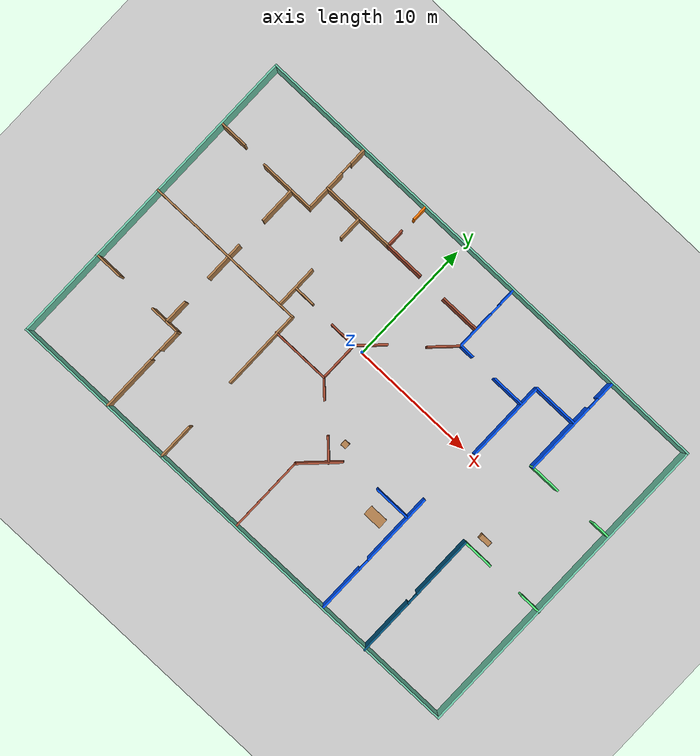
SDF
<sdf version="1.6">
 <world name="default">
  <model name="ground_plane">
   <static>1</static>
   <link name="link">
    <collision name="collision">
     <geometry><plane><normal>0 0 1</normal><size>100 100</size></plane></geometry>
     <surface>
      <contact><collide_bitmask>65535</collide_bitmask></contact>
      <friction><ode><mu>100</mu><mu2>50</mu2></ode></friction>
     </surface>
    </collision>
    <visual name="visual">
     <cast_shadows>0</cast_shadows>
     <geometry><plane><normal>0 0 1</normal><size>100 100</size></plane></geometry>
     <material>
      <script><uri>file://media/materials/scripts/gazebo.material</uri><name>Gazebo/Grey</name></script>
     </material>
    </visual>
   </link>
  </model>
  <model name="Building">
   <pose>1.66654 -2.2526 0 0 -0 0</pose>
   <link name="Wall_1">
    <collision name="Wall_1_Collision">
     <geometry><box><size>40 0.15 2.5</size></box></geometry>
     <pose>0 0 1.25 0 -0 0</pose>
    </collision>
    <visual name="Wall_1_Visual">
     <pose>0 0 1.25 0 -0 0</pose>
     <geometry><box><size>40 0.15 2.5</size></box></geometry>
     <material>
      <script><uri>file://media/materials/scripts/gazebo.material</uri><name>Gazebo/Grey</name></script>
      <ambient>0.435294 0.796078 0.67451 1</ambient>
     </material>
     <meta><layer>0</layer></meta>
    </visual>
    <pose>-0.022022 12.8298 0 0 -0 0</pose>
   </link>
   <link name="Wall_15">
    <pose>-12.1346 -9.16282 0 0 -0 1.5708</pose>
    <visual name="Wall_15_Visual_0">
     <pose>-1.36925 0 1.25 0 -0 0</pose>
     <geometry><box><size>4.51149 0.15 2.5</size></box></geometry>
     <material>
      <script><uri>file://media/materials/scripts/gazebo.material</uri><name>Gazebo/Wood</name></script>
      <ambient>1 1 1 1</ambient>
     </material>
     <meta><layer>0</layer></meta>
    </visual>
    <collision name="Wall_15_Collision_0">
     <geometry><box><size>4.51149 0.15 2.5</size></box></geometry>
     <pose>-1.36925 0 1.25 0 -0 0</pose>
    </collision>
    <visual name="Wall_15_Visual_1">
     <pose>2.70575 0 1.25 0 -0 0</pose>
     <geometry><box><size>1.83851 0.15 2.5</size></box></geometry>
     <material>
      <script><uri>file://media/materials/scripts/gazebo.material</uri><name>Gazebo/Wood</name></script>
      <ambient>1 1 1 1</ambient>
     </material>
     <meta><layer>0</layer></meta>
    </visual>
    <collision name="Wall_15_Collision_1">
     <geometry><box><size>1.83851 0.15 2.5</size></box></geometry>
     <pose>2.70575 0 1.25 0 -0 0</pose>
    </collision>
    <visual name="Wall_15_Visual_2">
     <pose>1.33649 0 2.25 0 -0 0</pose>
     <geometry><box><size>0.9 0.15 0.5</size></box></geometry>
     <material>
      <script><uri>file://media/materials/scripts/gazebo.material</uri><name>Gazebo/Wood</name></script>
      <ambient>1 1 1 1</ambient>
     </material>
     <meta><layer>0</layer></meta>
    </visual>
    <collision name="Wall_15_Collision_2">
     <geometry><box><size>0.9 0.15 0.5</size></box></geometry>
     <pose>1.33649 0 2.25 0 -0 0</pose>
    </collision>
   </link>
   <link name="Wall_16">
    <collision name="Wall_16_Collision">
     <geometry><box><size>2.5 0.15 2.5</size></box></geometry>
     <pose>0 0 1.25 0 -0 0</pose>
    </collision>
    <visual name="Wall_16_Visual">
     <pose>0 0 1.25 0 -0 0</pose>
     <geometry><box><size>2.5 0.15 2.5</size></box></geometry>
     <material>
      <script><uri>file://media/materials/scripts/gazebo.material</uri><name>Gazebo/Wood</name></script>
      <ambient>1 1 1 1</ambient>
     </material>
     <meta><layer>0</layer></meta>
    </visual>
    <pose>-13.3096 -5.61282 0 0 -0 3.14159</pose>
   </link>
   <link name="Wall_18">
    <collision name="Wall_18_Collision">
     <geometry><box><size>2.25 0.15 2.5</size></box></geometry>
     <pose>0 0 1.25 0 -0 0</pose>
    </collision>
    <visual name="Wall_18_Visual">
     <pose>0 0 1.25 0 -0 0</pose>
     <geometry><box><size>2.25 0.15 2.5</size></box></geometry>
     <material>
      <script><uri>file://media/materials/scripts/gazebo.material</uri><name>Gazebo/Wood</name></script>
      <ambient>1 1 1 1</ambient>
     </material>
     <meta><layer>0</layer></meta>
    </visual>
    <pose>-18.8793 -5.52715 0 0 -0 0</pose>
   </link>
   <link name="Wall_2">
    <collision name="Wall_2_Collision">
     <geometry><box><size>25.75 0.15 2.5</size></box></geometry>
     <pose>0 0 1.25 0 -0 0</pose>
    </collision>
    <visual name="Wall_2_Visual">
     <pose>0 0 1.25 0 -0 0</pose>
     <geometry><box><size>25.75 0.15 2.5</size></box></geometry>
     <material>
      <script><uri>file://media/materials/scripts/gazebo.material</uri><name>Gazebo/Grey</name></script>
      <ambient>0.435294 0.796078 0.67451 1</ambient>
     </material>
     <meta><layer>0</layer></meta>
    </visual>
    <pose>19.903 0.029824 0 0 0 -1.5708</pose>
   </link>
   <link name="Wall_20">
    <collision name="Wall_20_Collision">
     <geometry><box><size>3 0.15 2.5</size></box></geometry>
     <pose>0 0 1.25 0 -0 0</pose>
    </collision>
    <visual name="Wall_20_Visual">
     <pose>0 0 1.25 0 -0 0</pose>
     <geometry><box><size>3 0.15 2.5</size></box></geometry>
     <material>
      <script><uri>file://media/materials/scripts/gazebo.material</uri><name>Gazebo/Wood</name></script>
      <ambient>1 1 1 1</ambient>
     </material>
     <meta><layer>0</layer></meta>
    </visual>
    <pose>-13.1276 5.72535 0 0 0 -1.5708</pose>
   </link>
   <link name="Wall_22">
    <collision name="Wall_22_Collision">
     <geometry><box><size>2 0.15 2.5</size></box></geometry>
     <pose>0 0 1.25 0 -0 0</pose>
    </collision>
    <visual name="Wall_22_Visual">
     <pose>0 0 1.25 0 -0 0</pose>
     <geometry><box><size>2 0.15 2.5</size></box></geometry>
     <material>
      <script><uri>file://media/materials/scripts/gazebo.material</uri><name>Gazebo/Wood</name></script>
      <ambient>1 1 1 1</ambient>
     </material>
     <meta><layer>0</layer></meta>
    </visual>
    <pose>-13.1876 -4.66182 0 0 -0 1.5708</pose>
   </link>
   <link name="Wall_24">
    <pose>-15.2543 0.737272 0 0 -0 0</pose>
    <visual name="Wall_24_Visual_0">
     <pose>-3.16583 0 1.25 0 -0 0</pose>
     <geometry><box><size>3.16833 0.15 2.5</size></box></geometry>
     <material>
      <script><uri>file://media/materials/scripts/gazebo.material</uri><name>Gazebo/Wood</name></script>
      <ambient>1 1 1 1</ambient>
     </material>
     <meta><layer>0</layer></meta>
    </visual>
    <collision name="Wall_24_Collision_0">
     <geometry><box><size>3.16833 0.15 2.5</size></box></geometry>
     <pose>-3.16583 0 1.25 0 -0 0</pose>
    </collision>
    <visual name="Wall_24_Visual_1">
     <pose>2.03417 0 1.25 0 -0 0</pose>
     <geometry><box><size>5.43166 0.15 2.5</size></box></geometry>
     <material>
      <script><uri>file://media/materials/scripts/gazebo.material</uri><name>Gazebo/Wood</name></script>
      <ambient>1 1 1 1</ambient>
     </material>
     <meta><layer>0</layer></meta>
    </visual>
    <collision name="Wall_24_Collision_1">
     <geometry><box><size>5.43166 0.15 2.5</size></box></geometry>
     <pose>2.03417 0 1.25 0 -0 0</pose>
    </collision>
    <visual name="Wall_24_Visual_2">
     <pose>-1.13166 0 2.25 0 -0 0</pose>
     <geometry><box><size>0.9 0.15 0.5</size></box></geometry>
     <material>
      <script><uri>file://media/materials/scripts/gazebo.material</uri><name>Gazebo/Wood</name></script>
      <ambient>1 1 1 1</ambient>
     </material>
     <meta><layer>0</layer></meta>
    </visual>
    <collision name="Wall_24_Collision_2">
     <geometry><box><size>0.9 0.15 0.5</size></box></geometry>
     <pose>-1.13166 0 2.25 0 -0 0</pose>
    </collision>
   </link>
   <link name="Wall_26">
    <collision name="Wall_26_Collision">
     <geometry><box><size>3.25 0.15 2.5</size></box></geometry>
     <pose>0 0 1.25 0 -0 0</pose>
    </collision>
    <visual name="Wall_26_Visual">
     <pose>0 0 1.25 0 -0 0</pose>
     <geometry><box><size>3.25 0.15 2.5</size></box></geometry>
     <material>
      <script><uri>file://media/materials/scripts/gazebo.material</uri><name>Gazebo/Wood</name></script>
      <ambient>1 1 1 1</ambient>
     </material>
     <meta><layer>0</layer></meta>
    </visual>
    <pose>-13.1573 0.242073 0 0 0 -1.5708</pose>
   </link>
   <link name="Wall_29">
    <pose>12.8432 -7.65482 0 0 -0 1.5708</pose>
    <visual name="Wall_29_Visual_0">
     <pose>-2.98763 0 1.25 0 -0 0</pose>
     <geometry><box><size>4.52474 0.15 2.5</size></box></geometry>
     <material>
      <script><uri>file://media/materials/scripts/gazebo.material</uri><name>Gazebo/Grey</name></script>
      <ambient>0 0.333333 0.498039 1</ambient>
     </material>
     <meta><layer>0</layer></meta>
    </visual>
    <collision name="Wall_29_Collision_0">
     <geometry><box><size>4.52474 0.15 2.5</size></box></geometry>
     <pose>-2.98763 0 1.25 0 -0 0</pose>
    </collision>
    <visual name="Wall_29_Visual_1">
     <pose>2.71237 0 1.25 0 -0 0</pose>
     <geometry><box><size>5.07526 0.15 2.5</size></box></geometry>
     <material>
      <script><uri>file://media/materials/scripts/gazebo.material</uri><name>Gazebo/Grey</name></script>
      <ambient>0 0.333333 0.498039 1</ambient>
     </material>
     <meta><layer>0</layer></meta>
    </visual>
    <collision name="Wall_29_Collision_1">
     <geometry><box><size>5.07526 0.15 2.5</size></box></geometry>
     <pose>2.71237 0 1.25 0 -0 0</pose>
    </collision>
    <visual name="Wall_29_Visual_2">
     <pose>-0.275263 0 2.25 0 -0 0</pose>
     <geometry><box><size>0.9 0.15 0.5</size></box></geometry>
     <material>
      <script><uri>file://media/materials/scripts/gazebo.material</uri><name>Gazebo/Grey</name></script>
      <ambient>0 0.333333 0.498039 1</ambient>
     </material>
     <meta><layer>0</layer></meta>
    </visual>
    <collision name="Wall_29_Collision_2">
     <geometry><box><size>0.9 0.15 0.5</size></box></geometry>
     <pose>-0.275263 0 2.25 0 -0 0</pose>
    </collision>
   </link>
   <link name="Wall_3">
    <collision name="Wall_3_Collision">
     <geometry><box><size>40 0.15 2.5</size></box></geometry>
     <pose>0 0 1.25 0 -0 0</pose>
    </collision>
    <visual name="Wall_3_Visual">
     <pose>0 0 1.25 0 -0 0</pose>
     <geometry><box><size>40 0.15 2.5</size></box></geometry>
     <material>
      <script><uri>file://media/materials/scripts/gazebo.material</uri><name>Gazebo/Grey</name></script>
      <ambient>0.435294 0.796078 0.67451 1</ambient>
     </material>
     <meta><layer>0</layer></meta>
    </visual>
    <pose>-0.022022 -12.7702 0 0 -0 3.14159</pose>
   </link>
   <link name="Wall_30">
    <collision name="Wall_30_Collision">
     <geometry><box><size>2.5 0.15 2.5</size></box></geometry>
     <pose>0 0 1.25 0 -0 0</pose>
    </collision>
    <visual name="Wall_30_Visual">
     <pose>0 0 1.25 0 -0 0</pose>
     <geometry><box><size>2.5 0.15 2.5</size></box></geometry>
     <material>
      <script><uri>file://media/materials/scripts/gazebo.material</uri><name>Gazebo/Grey</name></script>
      <ambient>0.333333 1 0.498039 1</ambient>
     </material>
     <meta><layer>0</layer></meta>
    </visual>
    <pose>14.0182 -2.47982 0 0 -0 0</pose>
   </link>
   <link name="Wall_32">
    <collision name="Wall_32_Collision">
     <geometry><box><size>1.75 0.15 2.5</size></box></geometry>
     <pose>0 0 1.25 0 -0 0</pose>
    </collision>
    <visual name="Wall_32_Visual">
     <pose>0 0 1.25 0 -0 0</pose>
     <geometry><box><size>1.75 0.15 2.5</size></box></geometry>
     <material>
      <script><uri>file://media/materials/scripts/gazebo.material</uri><name>Gazebo/Grey</name></script>
      <ambient>0.333333 1 0.498039 1</ambient>
     </material>
     <meta><layer>0</layer></meta>
    </visual>
    <pose>19.147 -2.48795 0 0 -0 3.14159</pose>
   </link>
   <link name="Wall_34">
    <collision name="Wall_34_Collision">
     <geometry><box><size>1.5 0.15 2.5</size></box></geometry>
     <pose>0 0 1.25 0 -0 0</pose>
    </collision>
    <visual name="Wall_34_Visual">
     <pose>0 0 1.25 0 -0 0</pose>
     <geometry><box><size>1.5 0.15 2.5</size></box></geometry>
     <material>
      <script><uri>file://media/materials/scripts/gazebo.material</uri><name>Gazebo/Grey</name></script>
      <ambient>0.333333 1 0.498039 1</ambient>
     </material>
     <meta><layer>0</layer></meta>
    </visual>
    <pose>19.2034 4.71614 0 0 -0 3.14159</pose>
   </link>
   <link name="Wall_36">
    <pose>12.6743 8.69753 0 0 -0 1.5708</pose>
    <visual name="Wall_36_Visual_0">
     <pose>-1.21115 0 1.25 0 -0 0</pose>
     <geometry><box><size>5.8277 0.15 2.5</size></box></geometry>
     <material>
      <script><uri>file://media/materials/scripts/gazebo.material</uri><name>Gazebo/Grey</name></script>
      <ambient>0 0.333333 1 1</ambient>
     </material>
     <meta><layer>0</layer></meta>
    </visual>
    <collision name="Wall_36_Collision_0">
     <geometry><box><size>5.8277 0.15 2.5</size></box></geometry>
     <pose>-1.21115 0 1.25 0 -0 0</pose>
    </collision>
    <visual name="Wall_36_Visual_1">
     <pose>3.36385 0 1.25 0 -0 0</pose>
     <geometry><box><size>1.52231 0.15 2.5</size></box></geometry>
     <material>
      <script><uri>file://media/materials/scripts/gazebo.material</uri><name>Gazebo/Grey</name></script>
      <ambient>0 0.333333 1 1</ambient>
     </material>
     <meta><layer>0</layer></meta>
    </visual>
    <collision name="Wall_36_Collision_1">
     <geometry><box><size>1.52231 0.15 2.5</size></box></geometry>
     <pose>3.36385 0 1.25 0 -0 0</pose>
    </collision>
    <visual name="Wall_36_Visual_2">
     <pose>2.1527 0 2.25 0 -0 0</pose>
     <geometry><box><size>0.9 0.15 0.5</size></box></geometry>
     <material>
      <script><uri>file://media/materials/scripts/gazebo.material</uri><name>Gazebo/Grey</name></script>
      <ambient>0 0.333333 1 1</ambient>
     </material>
     <meta><layer>0</layer></meta>
    </visual>
    <collision name="Wall_36_Collision_2">
     <geometry><box><size>0.9 0.15 0.5</size></box></geometry>
     <pose>2.1527 0 2.25 0 -0 0</pose>
    </collision>
   </link>
   <link name="Wall_38">
    <collision name="Wall_38_Collision">
     <geometry><box><size>2.5 0.15 2.5</size></box></geometry>
     <pose>0 0 1.25 0 -0 0</pose>
    </collision>
    <visual name="Wall_38_Visual">
     <pose>0 0 1.25 0 -0 0</pose>
     <geometry><box><size>2.5 0.15 2.5</size></box></geometry>
     <material>
      <script><uri>file://media/materials/scripts/gazebo.material</uri><name>Gazebo/Grey</name></script>
      <ambient>0.333333 1 0.498039 1</ambient>
     </material>
     <meta><layer>0</layer></meta>
    </visual>
    <pose>13.8493 4.64753 0 0 -0 0</pose>
   </link>
   <link name="Wall_4">
    <collision name="Wall_4_Collision">
     <geometry><box><size>25.75 0.15 2.5</size></box></geometry>
     <pose>0 0 1.25 0 -0 0</pose>
    </collision>
    <visual name="Wall_4_Visual">
     <pose>0 0 1.25 0 -0 0</pose>
     <geometry><box><size>25.75 0.15 2.5</size></box></geometry>
     <material>
      <script><uri>file://media/materials/scripts/gazebo.material</uri><name>Gazebo/Grey</name></script>
      <ambient>0.435294 0.796078 0.67451 1</ambient>
     </material>
     <meta><layer>0</layer></meta>
    </visual>
    <pose>-19.947 0.029824 0 0 -0 1.5708</pose>
   </link>
   <link name="Wall_40">
    <collision name="Wall_40_Collision">
     <geometry><box><size>3.75 0.15 2.5</size></box></geometry>
     <pose>0 0 1.25 0 -0 0</pose>
    </collision>
    <visual name="Wall_40_Visual">
     <pose>0 0 1.25 0 -0 0</pose>
     <geometry><box><size>3.75 0.15 2.5</size></box></geometry>
     <material>
      <script><uri>file://media/materials/scripts/gazebo.material</uri><name>Gazebo/Grey</name></script>
      <ambient>0 0.333333 1 1</ambient>
     </material>
     <meta><layer>0</layer></meta>
    </visual>
    <pose>10.8525 8.90126 0 0 -0 3.14159</pose>
   </link>
   <link name="Wall_41">
    <collision name="Wall_41_Collision">
     <geometry><box><size>6.5 0.15 2.5</size></box></geometry>
     <pose>0 0 1.25 0 -0 0</pose>
    </collision>
    <visual name="Wall_41_Visual">
     <pose>0 0 1.25 0 -0 0</pose>
     <geometry><box><size>6.5 0.15 2.5</size></box></geometry>
     <material>
      <script><uri>file://media/materials/scripts/gazebo.material</uri><name>Gazebo/Grey</name></script>
      <ambient>0 0.333333 1 1</ambient>
     </material>
     <meta><layer>0</layer></meta>
    </visual>
    <pose>9.05253 5.72626 0 0 0 -1.5708</pose>
   </link>
   <link name="Wall_46">
    <pose>8.69095 -7.47844 0 0 -0 1.5708</pose>
    <visual name="Wall_46_Visual_0">
     <pose>-3.3871 0 1.25 0 -0 0</pose>
     <geometry><box><size>3.7258 0.15 2.5</size></box></geometry>
     <material>
      <script><uri>file://media/materials/scripts/gazebo.material</uri><name>Gazebo/Grey</name></script>
      <ambient>0 0.333333 1 1</ambient>
     </material>
     <meta><layer>0</layer></meta>
    </visual>
    <collision name="Wall_46_Collision_0">
     <geometry><box><size>3.7258 0.15 2.5</size></box></geometry>
     <pose>-3.3871 0 1.25 0 -0 0</pose>
    </collision>
    <visual name="Wall_46_Visual_1">
     <pose>2.3129 0 1.25 0 -0 0</pose>
     <geometry><box><size>5.8742 0.15 2.5</size></box></geometry>
     <material>
      <script><uri>file://media/materials/scripts/gazebo.material</uri><name>Gazebo/Grey</name></script>
      <ambient>0 0.333333 1 1</ambient>
     </material>
     <meta><layer>0</layer></meta>
    </visual>
    <collision name="Wall_46_Collision_1">
     <geometry><box><size>5.8742 0.15 2.5</size></box></geometry>
     <pose>2.3129 0 1.25 0 -0 0</pose>
    </collision>
    <visual name="Wall_46_Visual_2">
     <pose>-1.0742 0 2.25 0 -0 0</pose>
     <geometry><box><size>0.9 0.15 0.5</size></box></geometry>
     <material>
      <script><uri>file://media/materials/scripts/gazebo.material</uri><name>Gazebo/Grey</name></script>
      <ambient>0 0.333333 1 1</ambient>
     </material>
     <meta><layer>0</layer></meta>
    </visual>
    <collision name="Wall_46_Collision_2">
     <geometry><box><size>0.9 0.15 0.5</size></box></geometry>
     <pose>-1.0742 0 2.25 0 -0 0</pose>
    </collision>
   </link>
   <link name="Wall_48">
    <collision name="Wall_48_Collision">
     <geometry><box><size>6 0.15 2.5</size></box></geometry>
     <pose>0 0 1.25 0 -0 0</pose>
    </collision>
    <visual name="Wall_48_Visual">
     <pose>0 0 1.25 0 -0 0</pose>
     <geometry><box><size>6 0.15 2.5</size></box></geometry>
     <material>
      <script><uri>file://media/materials/scripts/gazebo.material</uri><name>Gazebo/Wood</name></script>
      <ambient>1 1 1 1</ambient>
     </material>
     <meta><layer>0</layer></meta>
    </visual>
    <pose>-8.43698 9.03275 0 0 -0 0</pose>
   </link>
   <link name="Wall_54">
    <collision name="Wall_54_Collision">
     <geometry><box><size>3.75 0.15 2.5</size></box></geometry>
     <pose>0 0 1.25 0 -0 0</pose>
    </collision>
    <visual name="Wall_54_Visual">
     <pose>0 0 1.25 0 -0 0</pose>
     <geometry><box><size>3.75 0.15 2.5</size></box></geometry>
     <material>
      <script><uri>file://media/materials/scripts/gazebo.material</uri><name>Gazebo/Wood</name></script>
      <ambient>1 1 1 1</ambient>
     </material>
     <meta><layer>0</layer></meta>
    </visual>
    <pose>-8.77934 0.737272 0 0 -0 0</pose>
   </link>
   <link name="Wall_55">
    <collision name="Wall_55_Collision">
     <geometry><box><size>6.5 0.15 2.5</size></box></geometry>
     <pose>0 0 1.25 0 -0 0</pose>
    </collision>
    <visual name="Wall_55_Visual">
     <pose>0 0 1.25 0 -0 0</pose>
     <geometry><box><size>6.5 0.15 2.5</size></box></geometry>
     <material>
      <script><uri>file://media/materials/scripts/gazebo.material</uri><name>Gazebo/Wood</name></script>
      <ambient>1 1 1 1</ambient>
     </material>
     <meta><layer>0</layer></meta>
    </visual>
    <pose>-6.97934 -2.43773 0 0 0 -1.5708</pose>
   </link>
   <link name="Wall_57">
    <collision name="Wall_57_Collision">
     <geometry><box><size>3 0.15 2.5</size></box></geometry>
     <pose>0 0 1.25 0 -0 0</pose>
    </collision>
    <visual name="Wall_57_Visual">
     <pose>0 0 1.25 0 -0 0</pose>
     <geometry><box><size>3 0.15 2.5</size></box></geometry>
     <material>
      <script><uri>file://media/materials/scripts/gazebo.material</uri><name>Gazebo/Wood</name></script>
      <ambient>1 1 1 1</ambient>
     </material>
     <meta><layer>0</layer></meta>
    </visual>
    <pose>-6.93144 -11.3458 0 0 -0 1.5708</pose>
   </link>
   <link name="Wall_59">
    <collision name="Wall_59_Collision">
     <geometry><box><size>4.75 0.15 2.5</size></box></geometry>
     <pose>0 0 1.25 0 -0 0</pose>
    </collision>
    <visual name="Wall_59_Visual">
     <pose>0 0 1.25 0 -0 0</pose>
     <geometry><box><size>4.75 0.15 2.5</size></box></geometry>
     <material>
      <script><uri>file://media/materials/scripts/gazebo.material</uri><name>Gazebo/Bricks</name></script>
      <ambient>1 1 1 1</ambient>
     </material>
     <meta><layer>0</layer></meta>
    </visual>
    <pose>-4.72167 -0.861079 0 0 -0 0</pose>
   </link>
   <link name="Wall_6">
    <collision name="Wall_6_Collision">
     <geometry><box><size>2.25 0.15 2.5</size></box></geometry>
     <pose>0 0 1.25 0 -0 0</pose>
    </collision>
    <visual name="Wall_6_Visual">
     <pose>0 0 1.25 0 -0 0</pose>
     <geometry><box><size>2.25 0.15 2.5</size></box></geometry>
     <material>
      <script><uri>file://media/materials/scripts/gazebo.material</uri><name>Gazebo/Wood</name></script>
      <ambient>1 1 1 1</ambient>
     </material>
     <meta><layer>0</layer></meta>
    </visual>
    <pose>-18.7981 7.25334 0 0 -0 0</pose>
   </link>
   <link name="Wall_61">
    <pose>0.286548 -9.72076 0 0 -0 1.5708</pose>
    <visual name="Wall_61_Visual_0">
     <pose>-1.77411 0 1.25 0 -0 0</pose>
     <geometry><box><size>2.70178 0.15 2.5</size></box></geometry>
     <material>
      <script><uri>file://media/materials/scripts/gazebo.material</uri><name>Gazebo/Bricks</name></script>
      <ambient>1 1 1 1</ambient>
     </material>
     <meta><layer>0</layer></meta>
    </visual>
    <collision name="Wall_61_Collision_0">
     <geometry><box><size>2.70178 0.15 2.5</size></box></geometry>
     <pose>-1.77411 0 1.25 0 -0 0</pose>
    </collision>
    <visual name="Wall_61_Visual_1">
     <pose>1.80089 0 1.25 0 -0 0</pose>
     <geometry><box><size>2.64822 0.15 2.5</size></box></geometry>
     <material>
      <script><uri>file://media/materials/scripts/gazebo.material</uri><name>Gazebo/Bricks</name></script>
      <ambient>1 1 1 1</ambient>
     </material>
     <meta><layer>0</layer></meta>
    </visual>
    <collision name="Wall_61_Collision_1">
     <geometry><box><size>2.64822 0.15 2.5</size></box></geometry>
     <pose>1.80089 0 1.25 0 -0 0</pose>
    </collision>
    <visual name="Wall_61_Visual_2">
     <pose>0.026779 0 2.25 0 -0 0</pose>
     <geometry><box><size>0.9 0.15 0.5</size></box></geometry>
     <material>
      <script><uri>file://media/materials/scripts/gazebo.material</uri><name>Gazebo/Bricks</name></script>
      <ambient>1 1 1 1</ambient>
     </material>
     <meta><layer>0</layer></meta>
    </visual>
    <collision name="Wall_61_Collision_2">
     <geometry><box><size>0.9 0.15 0.5</size></box></geometry>
     <pose>0.026779 0 2.25 0 -0 0</pose>
    </collision>
   </link>
   <link name="Wall_63">
    <collision name="Wall_63_Collision">
     <geometry><box><size>3 0.15 2.5</size></box></geometry>
     <pose>0 0 1.25 0 -0 0</pose>
    </collision>
    <visual name="Wall_63_Visual">
     <pose>0 0 1.25 0 -0 0</pose>
     <geometry><box><size>3 0.15 2.5</size></box></geometry>
     <material>
      <script><uri>file://media/materials/scripts/gazebo.material</uri><name>Gazebo/Grey</name></script>
      <ambient>0 0.333333 1 1</ambient>
     </material>
     <meta><layer>0</layer></meta>
    </visual>
    <pose>7.25246 -4.01895 0 0 -0 3.14159</pose>
   </link>
   <link name="Wall_66">
    <collision name="Wall_66_Collision">
     <geometry><box><size>3.5 0.15 2.5</size></box></geometry>
     <pose>0 0 1.25 0 -0 0</pose>
    </collision>
    <visual name="Wall_66_Visual">
     <pose>0 0 1.25 0 -0 0</pose>
     <geometry><box><size>3.5 0.15 2.5</size></box></geometry>
     <material>
      <script><uri>file://media/materials/scripts/gazebo.material</uri><name>Gazebo/Bricks</name></script>
      <ambient>1 1 1 1</ambient>
     </material>
     <meta><layer>0</layer></meta>
    </visual>
    <pose>1.47095 -5.48636 0 0 -0 0.785398</pose>
   </link>
   <link name="Wall_68">
    <collision name="Wall_68_Collision">
     <geometry><box><size>1.75 0.15 2.5</size></box></geometry>
     <pose>0 0 1.25 0 -0 0</pose>
    </collision>
    <visual name="Wall_68_Visual">
     <pose>0 0 1.25 0 -0 0</pose>
     <geometry><box><size>1.75 0.15 2.5</size></box></geometry>
     <material>
      <script><uri>file://media/materials/scripts/gazebo.material</uri><name>Gazebo/Bricks</name></script>
      <ambient>1 1 1 1</ambient>
     </material>
     <meta><layer>0</layer></meta>
    </visual>
    <pose>-1.85598 -1.42676 0 0 0 -0.785398</pose>
   </link>
   <link name="Wall_70">
    <collision name="Wall_70_Collision">
     <geometry><box><size>2 0.15 2.5</size></box></geometry>
     <pose>0 0 1.25 0 -0 0</pose>
    </collision>
    <visual name="Wall_70_Visual">
     <pose>0 0 1.25 0 -0 0</pose>
     <geometry><box><size>2 0.15 2.5</size></box></geometry>
     <material>
      <script><uri>file://media/materials/scripts/gazebo.material</uri><name>Gazebo/Bricks</name></script>
      <ambient>1 1 1 1</ambient>
     </material>
     <meta><layer>0</layer></meta>
    </visual>
    <pose>1.31835 -4.36146 0 0 -0 2.35619</pose>
   </link>
   <link name="Wall_72">
    <collision name="Wall_72_Collision">
     <geometry><box><size>3.5 0.15 2.5</size></box></geometry>
     <pose>0 0 1.25 0 -0 0</pose>
    </collision>
    <visual name="Wall_72_Visual">
     <pose>0 0 1.25 0 -0 0</pose>
     <geometry><box><size>3.5 0.15 2.5</size></box></geometry>
     <material>
      <script><uri>file://media/materials/scripts/gazebo.material</uri><name>Gazebo/Wood</name></script>
      <ambient>1 1 1 1</ambient>
     </material>
     <meta><layer>0</layer></meta>
    </visual>
    <pose>-8.23539 2.39683 0 0 -0 1.5708</pose>
   </link>
   <link name="Wall_74">
    <collision name="Wall_74_Collision">
     <geometry><box><size>2 0.15 2.5</size></box></geometry>
     <pose>0 0 1.25 0 -0 0</pose>
    </collision>
    <visual name="Wall_74_Visual">
     <pose>0 0 1.25 0 -0 0</pose>
     <geometry><box><size>2 0.15 2.5</size></box></geometry>
     <material>
      <script><uri>file://media/materials/scripts/gazebo.material</uri><name>Gazebo/Wood</name></script>
      <ambient>1 1 1 1</ambient>
     </material>
     <meta><layer>0</layer></meta>
    </visual>
    <pose>-8.29471 8.10224 0 0 0 -1.5708</pose>
   </link>
   <link name="Wall_76">
    <collision name="Wall_76_Collision">
     <geometry><box><size>3.25 0.15 2.5</size></box></geometry>
     <pose>0 0 1.25 0 -0 0</pose>
    </collision>
    <visual name="Wall_76_Visual">
     <pose>0 0 1.25 0 -0 0</pose>
     <geometry><box><size>3.25 0.15 2.5</size></box></geometry>
     <material>
      <script><uri>file://media/materials/scripts/gazebo.material</uri><name>Gazebo/Bricks</name></script>
      <ambient>1 1 1 1</ambient>
     </material>
     <meta><layer>0</layer></meta>
    </visual>
    <pose>-2.42167 0.688921 0 0 -0 1.5708</pose>
   </link>
   <link name="Wall_77">
    <collision name="Wall_77_Collision">
     <geometry><box><size>2.25 0.15 2.5</size></box></geometry>
     <pose>0 0 1.25 0 -0 0</pose>
    </collision>
    <visual name="Wall_77_Visual">
     <pose>0 0 1.25 0 -0 0</pose>
     <geometry><box><size>2.25 0.15 2.5</size></box></geometry>
     <material>
      <script><uri>file://media/materials/scripts/gazebo.material</uri><name>Gazebo/Bricks</name></script>
      <ambient>1 1 1 1</ambient>
     </material>
     <meta><layer>0</layer></meta>
    </visual>
    <pose>-3.47167 2.23892 0 0 -0 3.14159</pose>
   </link>
   <link name="Wall_79">
    <collision name="Wall_79_Collision">
     <geometry><box><size>1.75 0.15 2.5</size></box></geometry>
     <pose>0 0 1.25 0 -0 0</pose>
    </collision>
    <visual name="Wall_79_Visual">
     <pose>0 0 1.25 0 -0 0</pose>
     <geometry><box><size>1.75 0.15 2.5</size></box></geometry>
     <material>
      <script><uri>file://media/materials/scripts/gazebo.material</uri><name>Gazebo/Wood</name></script>
      <ambient>1 1 1 1</ambient>
     </material>
     <meta><layer>0</layer></meta>
    </visual>
    <pose>-7.36493 2.38138 0 0 -0 0</pose>
   </link>
   <link name="Wall_8">
    <collision name="Wall_8_Collision">
     <geometry><box><size>4.5 0.15 2.5</size></box></geometry>
     <pose>0 0 1.25 0 -0 0</pose>
    </collision>
    <visual name="Wall_8_Visual">
     <pose>0 0 1.25 0 -0 0</pose>
     <geometry><box><size>4.5 0.15 2.5</size></box></geometry>
     <material>
      <script><uri>file://media/materials/scripts/gazebo.material</uri><name>Gazebo/Wood</name></script>
      <ambient>1 1 1 1</ambient>
     </material>
     <meta><layer>0</layer></meta>
    </visual>
    <pose>-13.5469 7.17399 0 0 -0 0</pose>
   </link>
   <link name="Wall_81">
    <collision name="Wall_81_Collision">
     <geometry><box><size>1.5 0.15 2.5</size></box></geometry>
     <pose>0 0 1.25 0 -0 0</pose>
    </collision>
    <visual name="Wall_81_Visual">
     <pose>0 0 1.25 0 -0 0</pose>
     <geometry><box><size>1.5 0.15 2.5</size></box></geometry>
     <material>
      <script><uri>file://media/materials/scripts/gazebo.material</uri><name>Gazebo/Bricks</name></script>
      <ambient>1 1 1 1</ambient>
     </material>
     <meta><layer>0</layer></meta>
    </visual>
    <pose>-5.51198 9.70776 0 0 -0 1.5708</pose>
   </link>
   <link name="Wall_85">
    <collision name="Wall_85_Collision">
     <geometry><box><size>1.25 0.15 2.5</size></box></geometry>
     <pose>0 0 1.25 0 -0 0</pose>
    </collision>
    <visual name="Wall_85_Visual">
     <pose>0 0 1.25 0 -0 0</pose>
     <geometry><box><size>1.25 0.15 2.5</size></box></geometry>
     <material>
      <script><uri>file://media/materials/scripts/gazebo.material</uri><name>Gazebo/Grey</name></script>
      <ambient>0.996078 0.47451 0.0196078 1</ambient>
     </material>
     <meta><layer>0</layer></meta>
    </visual>
    <pose>-5.45501 12.2092 0 0 0 -1.5708</pose>
   </link>
   <link name="Wall_87">
    <collision name="Wall_87_Collision">
     <geometry><box><size>2.75 0.15 2.5</size></box></geometry>
     <pose>0 0 1.25 0 -0 0</pose>
    </collision>
    <visual name="Wall_87_Visual">
     <pose>0 0 1.25 0 -0 0</pose>
     <geometry><box><size>2.75 0.15 2.5</size></box></geometry>
     <material>
      <script><uri>file://media/materials/scripts/gazebo.material</uri><name>Gazebo/Grey</name></script>
      <ambient>0 0.333333 1 1</ambient>
     </material>
     <meta><layer>0</layer></meta>
    </visual>
    <pose>7.75943 7.34571 0 0 -0 3.14159</pose>
   </link>
   <link name="Wall_89">
    <pose>3.09674 10.0842 0 0 0 -1.5708</pose>
    <visual name="Wall_89_Visual_0">
     <pose>-2.03489 0 1.25 0 -0 0</pose>
     <geometry><box><size>1.43023 0.15 2.5</size></box></geometry>
     <material>
      <script><uri>file://media/materials/scripts/gazebo.material</uri><name>Gazebo/Grey</name></script>
      <ambient>0 0.333333 1 1</ambient>
     </material>
     <meta><layer>0</layer></meta>
    </visual>
    <collision name="Wall_89_Collision_0">
     <geometry><box><size>1.43023 0.15 2.5</size></box></geometry>
     <pose>-2.03489 0 1.25 0 -0 0</pose>
    </collision>
    <visual name="Wall_89_Visual_1">
     <pose>1.16511 0 1.25 0 -0 0</pose>
     <geometry><box><size>3.16977 0.15 2.5</size></box></geometry>
     <material>
      <script><uri>file://media/materials/scripts/gazebo.material</uri><name>Gazebo/Grey</name></script>
      <ambient>0 0.333333 1 1</ambient>
     </material>
     <meta><layer>0</layer></meta>
    </visual>
    <collision name="Wall_89_Collision_1">
     <geometry><box><size>3.16977 0.15 2.5</size></box></geometry>
     <pose>1.16511 0 1.25 0 -0 0</pose>
    </collision>
    <visual name="Wall_89_Visual_2">
     <pose>-0.869774 0 2.25 0 -0 0</pose>
     <geometry><box><size>0.9 0.15 0.5</size></box></geometry>
     <material>
      <script><uri>file://media/materials/scripts/gazebo.material</uri><name>Gazebo/Grey</name></script>
      <ambient>0 0.333333 1 1</ambient>
     </material>
     <meta><layer>0</layer></meta>
    </visual>
    <collision name="Wall_89_Collision_2">
     <geometry><box><size>0.9 0.15 0.5</size></box></geometry>
     <pose>-0.869774 0 2.25 0 -0 0</pose>
    </collision>
   </link>
   <link name="Wall_9">
    <pose>-11.3719 9.97399 0 0 -0 1.5708</pose>
    <visual name="Wall_9_Visual_0">
     <pose>-1.1725 0 1.25 0 -0 0</pose>
     <geometry><box><size>3.40499 0.15 2.5</size></box></geometry>
     <material>
      <script><uri>file://media/materials/scripts/gazebo.material</uri><name>Gazebo/Wood</name></script>
      <ambient>1 1 1 1</ambient>
     </material>
     <meta><layer>0</layer></meta>
    </visual>
    <collision name="Wall_9_Collision_0">
     <geometry><box><size>3.40499 0.15 2.5</size></box></geometry>
     <pose>-1.1725 0 1.25 0 -0 0</pose>
    </collision>
    <visual name="Wall_9_Visual_1">
     <pose>2.1525 0 1.25 0 -0 0</pose>
     <geometry><box><size>1.44501 0.15 2.5</size></box></geometry>
     <material>
      <script><uri>file://media/materials/scripts/gazebo.material</uri><name>Gazebo/Wood</name></script>
      <ambient>1 1 1 1</ambient>
     </material>
     <meta><layer>0</layer></meta>
    </visual>
    <collision name="Wall_9_Collision_1">
     <geometry><box><size>1.44501 0.15 2.5</size></box></geometry>
     <pose>2.1525 0 1.25 0 -0 0</pose>
    </collision>
    <visual name="Wall_9_Visual_2">
     <pose>0.979991 0 2.25 0 -0 0</pose>
     <geometry><box><size>0.9 0.15 0.5</size></box></geometry>
     <material>
      <script><uri>file://media/materials/scripts/gazebo.material</uri><name>Gazebo/Wood</name></script>
      <ambient>1 1 1 1</ambient>
     </material>
     <meta><layer>0</layer></meta>
    </visual>
    <collision name="Wall_9_Collision_2">
     <geometry><box><size>0.9 0.15 0.5</size></box></geometry>
     <pose>0.979991 0 2.25 0 -0 0</pose>
    </collision>
   </link>
   <link name="Wall_90">
    <collision name="Wall_90_Collision">
     <geometry><box><size>1.25 0.15 2.5</size></box></geometry>
     <pose>0 0 1.25 0 -0 0</pose>
    </collision>
    <visual name="Wall_90_Visual">
     <pose>0 0 1.25 0 -0 0</pose>
     <geometry><box><size>1.25 0.15 2.5</size></box></geometry>
     <material>
      <script><uri>file://media/materials/scripts/gazebo.material</uri><name>Gazebo/Grey</name></script>
      <ambient>0 0.333333 1 1</ambient>
     </material>
     <meta><layer>0</layer></meta>
    </visual>
    <pose>3.64674 7.40921 0 0 -0 0</pose>
   </link>
   <link name="Wall_92">
    <collision name="Wall_92_Collision">
     <geometry><box><size>3.25 0.15 2.5</size></box></geometry>
     <pose>0 0 1.25 0 -0 0</pose>
    </collision>
    <visual name="Wall_92_Visual">
     <pose>0 0 1.25 0 -0 0</pose>
     <geometry><box><size>3.25 0.15 2.5</size></box></geometry>
     <material>
      <script><uri>file://media/materials/scripts/gazebo.material</uri><name>Gazebo/Bricks</name></script>
      <ambient>1 1 1 1</ambient>
     </material>
     <meta><layer>0</layer></meta>
    </visual>
    <pose>-3.96198 9.03275 0 0 -0 0</pose>
   </link>
   <link name="Wall_94">
    <collision name="Wall_94_Collision">
     <geometry><box><size>3.25 0.15 2.5</size></box></geometry>
     <pose>0 0 1.25 0 -0 0</pose>
    </collision>
    <visual name="Wall_94_Visual">
     <pose>0 0 1.25 0 -0 0</pose>
     <geometry><box><size>3.25 0.15 2.5</size></box></geometry>
     <material>
      <script><uri>file://media/materials/scripts/gazebo.material</uri><name>Gazebo/Bricks</name></script>
      <ambient>1 1 1 1</ambient>
     </material>
     <meta><layer>0</layer></meta>
    </visual>
    <pose>1.50848 8.9933 0 0 -0 0</pose>
   </link>
   <link name="Wall_96">
    <collision name="Wall_96_Collision">
     <geometry><box><size>2.5 0.15 2.5</size></box></geometry>
     <pose>0 0 1.25 0 -0 0</pose>
    </collision>
    <visual name="Wall_96_Visual">
     <pose>0 0 1.25 0 -0 0</pose>
     <geometry><box><size>2.5 0.15 2.5</size></box></geometry>
     <material>
      <script><uri>file://media/materials/scripts/gazebo.material</uri><name>Gazebo/Bricks</name></script>
      <ambient>1 1 1 1</ambient>
     </material>
     <meta><layer>0</layer></meta>
    </visual>
    <pose>2.26589 6.57836 0 0 0 -2.35619</pose>
   </link>
   <link name="Wall_98">
    <collision name="Wall_98_Collision">
     <geometry><box><size>2.5 0.15 2.5</size></box></geometry>
     <pose>0 0 1.25 0 -0 0</pose>
    </collision>
    <visual name="Wall_98_Visual">
     <pose>0 0 1.25 0 -0 0</pose>
     <geometry><box><size>2.5 0.15 2.5</size></box></geometry>
     <material>
      <script><uri>file://media/materials/scripts/gazebo.material</uri><name>Gazebo/Bricks</name></script>
      <ambient>1 1 1 1</ambient>
     </material>
     <meta><layer>0</layer></meta>
    </visual>
    <pose>-1.59082 3.06977 0 0 -0 0.785398</pose>
   </link>
   <static>1</static>
  </model>
  <model name="cabinet_0">
   <static>1</static>
   <link name="cabinet_bottom_plate">
    <inertial>
     <pose>0 0 -1 0 -0 0</pose>
     <inertia><ixx>2.05</ixx><ixy>0</ixy><ixz>0</ixz><iyy>2.05</iyy><iyz>0</iyz><izz>2.05</izz></inertia>
     <mass>25</mass>
    </inertial>
    <collision name="cabinet_bottom_plate_geom">
     <pose>0 0 0.01 0 -0 0</pose>
     <geometry><box><size>0.45 0.45 0.02</size></box></geometry>
    </collision>
    <visual name="cabinet_bottom_plate_geom_visual">
     <pose>0 0 0.01 0 -0 0</pose>
     <geometry><box><size>0.45 0.45 0.02</size></box></geometry>
     <material>
      <script><uri>file://media/materials/scripts/gazebo.material</uri><name>Gazebo/Wood</name></script>
     </material>
    </visual>
    <collision name="cabinet_bottom_plate_geom_cabinet_back_plate">
     <pose>0.235 0 0.51 0 -0 0</pose>
     <geometry><box><size>0.02 0.45 1.02</size></box></geometry>
    </collision>
    <visual name="cabinet_bottom_plate_geom_cabinet_back_plate_visual">
     <pose>0.235 0 0.51 0 -0 0</pose>
     <geometry><box><size>0.02 0.45 1.02</size></box></geometry>
     <material>
      <script><uri>file://media/materials/scripts/gazebo.material</uri><name>Gazebo/Wood</name></script>
     </material>
    </visual>
    <collision name="cabinet_bottom_plate_geom_cabinet_left_plate">
     <pose>0 0.235 0.51 0 -0 0</pose>
     <geometry><box><size>0.45 0.02 1.02</size></box></geometry>
    </collision>
    <visual name="cabinet_bottom_plate_geom_cabinet_left_plate_visual">
     <pose>0 0.235 0.51 0 -0 0</pose>
     <geometry><box><size>0.45 0.02 1.02</size></box></geometry>
     <material>
      <script><uri>file://media/materials/scripts/gazebo.material</uri><name>Gazebo/Wood</name></script>
     </material>
    </visual>
    <collision name="cabinet_bottom_plate_geom_cabinet_middle_plate">
     <pose>0 0 0.51 0 -0 0</pose>
     <geometry><box><size>0.45 0.45 0.02</size></box></geometry>
    </collision>
    <visual name="cabinet_bottom_plate_geom_cabinet_middle_plate_visual">
     <pose>0 0 0.51 0 -0 0</pose>
     <geometry><box><size>0.45 0.45 0.02</size></box></geometry>
     <material>
      <script><uri>file://media/materials/scripts/gazebo.material</uri><name>Gazebo/Wood</name></script>
     </material>
    </visual>
    <collision name="cabinet_bottom_plate_geom_cabinet_right_plate">
     <pose>0 -0.235 0.51 0 -0 0</pose>
     <geometry><box><size>0.45 0.02 1.02</size></box></geometry>
    </collision>
    <visual name="cabinet_bottom_plate_geom_cabinet_right_plate_visual">
     <pose>0 -0.235 0.51 0 -0 0</pose>
     <geometry><box><size>0.45 0.02 1.02</size></box></geometry>
     <material>
      <script><uri>file://media/materials/scripts/gazebo.material</uri><name>Gazebo/Wood</name></script>
     </material>
    </visual>
    <collision name="cabinet_bottom_plate_geom_cabinet_top_plate">
     <pose>0 0 1.01 0 -0 0</pose>
     <geometry><box><size>0.45 0.45 0.02</size></box></geometry>
    </collision>
    <visual name="cabinet_bottom_plate_geom_cabinet_top_plate_visual">
     <pose>0 0 1.01 0 -0 0</pose>
     <geometry><box><size>0.45 0.45 0.02</size></box></geometry>
     <material>
      <script><uri>file://media/materials/scripts/gazebo.material</uri><name>Gazebo/Wood</name></script>
     </material>
    </visual>
   </link>
   <pose>3.60576 -5.53772 0 0 -0 0</pose>
  </model>
  <model name="table_6">
   <static>1</static>
   <link name="link">
    <collision name="surface">
     <pose>0 0 1 0 -0 0</pose>
     <geometry><box><size>1.5 0.8 0.03</size></box></geometry>
     <surface><friction><ode><mu>0.6</mu><mu2>0.6</mu2></ode></friction></surface>
    </collision>
    <visual name="visual1">
     <pose>0 0 1 0 -0 0</pose>
     <geometry><box><size>1.5 0.8 0.03</size></box></geometry>
     <material>
      <script><uri>file://media/materials/scripts/gazebo.material</uri><name>Gazebo/Wood</name></script>
     </material>
    </visual>
    <collision name="front_left_leg">
     <pose>0.68 0.38 0.5 0 -0 0</pose>
     <geometry><cylinder><radius>0.02</radius><length>1</length></cylinder></geometry>
    </collision>
    <visual name="front_left_leg">
     <pose>0.68 0.38 0.5 0 -0 0</pose>
     <geometry><cylinder><radius>0.02</radius><length>1</length></cylinder></geometry>
     <material>
      <script><uri>file://media/materials/scripts/gazebo.material</uri><name>Gazebo/Grey</name></script>
     </material>
    </visual>
    <collision name="front_right_leg">
     <pose>0.68 -0.38 0.5 0 -0 0</pose>
     <geometry><cylinder><radius>0.02</radius><length>1</length></cylinder></geometry>
    </collision>
    <visual name="front_right_leg">
     <pose>0.68 -0.38 0.5 0 -0 0</pose>
     <geometry><cylinder><radius>0.02</radius><length>1</length></cylinder></geometry>
     <material>
      <script><uri>file://media/materials/scripts/gazebo.material</uri><name>Gazebo/Grey</name></script>
     </material>
    </visual>
    <collision name="back_right_leg">
     <pose>-0.68 -0.38 0.5 0 -0 0</pose>
     <geometry><cylinder><radius>0.02</radius><length>1</length></cylinder></geometry>
    </collision>
    <visual name="back_right_leg">
     <pose>-0.68 -0.38 0.5 0 -0 0</pose>
     <geometry><cylinder><radius>0.02</radius><length>1</length></cylinder></geometry>
     <material>
      <script><uri>file://media/materials/scripts/gazebo.material</uri><name>Gazebo/Grey</name></script>
     </material>
    </visual>
    <collision name="back_left_leg">
     <pose>-0.68 0.38 0.5 0 -0 0</pose>
     <geometry><cylinder><radius>0.02</radius><length>1</length></cylinder></geometry>
    </collision>
    <visual name="back_left_leg">
     <pose>-0.68 0.38 0.5 0 -0 0</pose>
     <geometry><cylinder><radius>0.02</radius><length>1</length></cylinder></geometry>
     <material>
      <script><uri>file://media/materials/scripts/gazebo.material</uri><name>Gazebo/Grey</name></script>
     </material>
    </visual>
   </link>
   <pose>8.72196 -7.82947 0 0 -0 0</pose>
  </model>
  <model name="bookshelf">
   <static>1</static>
   <link name="link">
    <inertial><mass>1</mass></inertial>
    <collision name="back">
     <pose>0 0.005 0.6 0 -0 0</pose>
     <geometry><box><size>0.9 0.01 1.2</size></box></geometry>
    </collision>
    <visual name="visual1">
     <pose>0 0.005 0.6 0 -0 0</pose>
     <geometry><box><size>0.9 0.01 1.2</size></box></geometry>
     <material>
      <script><uri>file://media/materials/scripts/gazebo.material</uri><name>Gazebo/Wood</name></script>
     </material>
    </visual>
    <collision name="left_side">
     <pose>0.45 -0.195 0.6 0 -0 0</pose>
     <geometry><box><size>0.02 0.4 1.2</size></box></geometry>
    </collision>
    <visual name="visual2">
     <pose>0.45 -0.195 0.6 0 -0 0</pose>
     <geometry><box><size>0.02 0.4 1.2</size></box></geometry>
     <material>
      <script><uri>file://media/materials/scripts/gazebo.material</uri><name>Gazebo/Wood</name></script>
     </material>
    </visual>
    <collision name="right_side">
     <pose>-0.45 -0.195 0.6 0 -0 0</pose>
     <geometry><box><size>0.02 0.4 1.2</size></box></geometry>
    </collision>
    <visual name="visual3">
     <pose>-0.45 -0.195 0.6 0 -0 0</pose>
     <geometry><box><size>0.02 0.4 1.2</size></box></geometry>
     <material>
      <script><uri>file://media/materials/scripts/gazebo.material</uri><name>Gazebo/Wood</name></script>
     </material>
    </visual>
    <collision name="bottom">
     <pose>0 -0.195 0.03 0 -0 0</pose>
     <geometry><box><size>0.88 0.4 0.06</size></box></geometry>
    </collision>
    <visual name="visual4">
     <pose>0 -0.195 0.03 0 -0 0</pose>
     <geometry><box><size>0.88 0.4 0.06</size></box></geometry>
     <material>
      <script><uri>file://media/materials/scripts/gazebo.material</uri><name>Gazebo/Wood</name></script>
     </material>
    </visual>
    <collision name="top">
     <pose>0 -0.195 1.19 0 -0 0</pose>
     <geometry><box><size>0.88 0.4 0.02</size></box></geometry>
    </collision>
    <visual name="visual5">
     <pose>0 -0.195 1.19 0 -0 0</pose>
     <geometry><box><size>0.88 0.4 0.02</size></box></geometry>
     <material>
      <script><uri>file://media/materials/scripts/gazebo.material</uri><name>Gazebo/Wood</name></script>
     </material>
    </visual>
    <collision name="low_shelf">
     <pose>0 -0.195 0.43 0 -0 0</pose>
     <geometry><box><size>0.88 0.4 0.02</size></box></geometry>
    </collision>
    <visual name="visual6">
     <pose>0 -0.195 0.43 0 -0 0</pose>
     <geometry><box><size>0.88 0.4 0.02</size></box></geometry>
     <material>
      <script><uri>file://media/materials/scripts/gazebo.material</uri><name>Gazebo/Wood</name></script>
     </material>
    </visual>
    <collision name="high_shelf">
     <pose>0 -0.195 0.8 0 -0 0</pose>
     <geometry><box><size>0.88 0.4 0.02</size></box></geometry>
    </collision>
    <visual name="visual7">
     <pose>0 -0.195 0.8 0 -0 0</pose>
     <geometry><box><size>0.88 0.4 0.02</size></box></geometry>
     <material>
      <script><uri>file://media/materials/scripts/gazebo.material</uri><name>Gazebo/Wood</name></script>
     </material>
    </visual>
   </link>
   <pose>15.5331 -3.47577 0 0 -0 0</pose>
  </model>
 </world>
</sdf>
